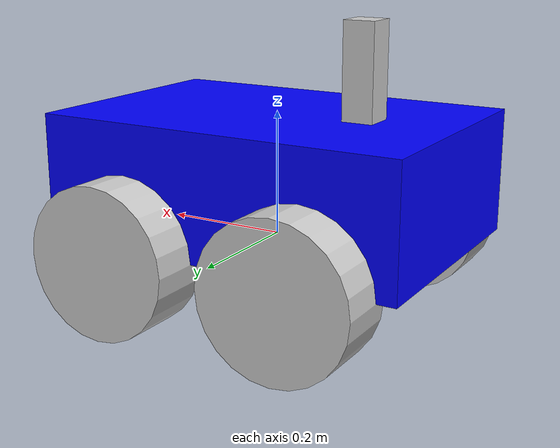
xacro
<?xml version="1.0"?>

<robot name="robot_with_wheels" xmlns:xacro="http://www.ros.org/wiki/xacro">

    <!-- XACRO VARIABLES -->

    <!-- name = that is the name of the variable-->
    <!-- value is the value the assigned inside the variable-->

    <xacro:property name="base_length" value="0.6">
    </xacro:property>

    <xacro:property name="base_width" value="0.4">
    </xacro:property>

    <xacro:property name="base_height" value="0.2">
    </xacro:property>

    <xacro:property name="wheel_radius" value="0.12">
    </xacro:property>

    <xacro:property name="wheel_length" value="0.1">
    </xacro:property>

    <xacro:property name="head_length" value="0.05">
    </xacro:property>

    <xacro:property name="head_width" value="0.05">
    </xacro:property>

    <xacro:property name="head_height" value="0.2">
    </xacro:property>

    <!-- COLORS -->

    <material name = "blue">
        <color rgba="0 0 1 1"/>
    </material>

    <material name = "grey">
        <color rgba="0.8 0.8 0.8 1"/>
    </material>

    <material name = "green">
        <color rgba="0 1 0 1"/>
    </material>

    <!-- LINKS -->

    <!-- ROBOT BODY (BASE) -->
    <link name="base_link">
        <visual>
            <geometry>
                <box size="${base_length} ${base_width} ${base_height}"/>
            </geometry>
            <origin xyz="0 0 0.1" rpy="0 0 0"/>
            <material name="blue"/>

        </visual>
    </link>

    <link name="foot_link">
    </link>

    <!-- ROBOT HEAD AT THE TOP -->
    <link name="head_link">
        <visual>
            <geometry>
                <box size="${head_length} ${head_width} ${head_height}"/>
            </geometry>
            <origin xyz="0 0 0.05" rpy="0.0 0.0 0.0"/>
            <material name="grey"/>
        </visual>
    </link>

    <!-- RIGHT BACK WHEEL -->
    <link name="right_back_wheel_link">
        <visual>
            <geometry>
                <cylinder radius="${wheel_radius}" length="${wheel_length}"/>
            </geometry>
            <origin xyz="0.0 0.0 0.0" rpy="${pi/2} 0.0 0.0"/>
            <!-- whatever put iside the ${} which is identified as xacros properties-->
            <material name="grey"/>

        </visual>

    </link>

    <!-- RIGHT FRONT WHEEL -->
    <link name="right_front_wheel_link">
        <visual>
            <geometry>
                <cylinder radius="${wheel_radius}" length="${wheel_length}"/>
            </geometry>
            <origin xyz="0.0 0.0 0.0" rpy="1.57 0.0 0.0"/>
            <material name="grey"/>
        </visual>
    </link>

    <!-- LEFT BACK WHEEL -->
    <link name="left_back_wheel_link">
        <visual>
            <geometry>
                <cylinder radius="${wheel_radius}" length="${wheel_length}"/>
            </geometry>
            <origin xyz="0 0 0" rpy="1.57 0.0 0.0"/>
            <material name="grey"/>
        </visual>
    </link>

    <!-- LEFT FRONT WHEEL -->
    <link name="left_front_wheel_link">
        <visual>
            <geometry>
                <cylinder radius="${wheel_radius}" length="${wheel_length}"/>
            </geometry>
            <origin xyz="0.0 0.0 0.0" rpy="1.57 0.0 0.0"/>
            <material name="grey"/>
        </visual>
    </link>

    <!-- JOINTS -->

    <!-- BASE AND THE HEAD JOINT -->
    <joint name="base_head" type="fixed">
        <parent link="base_link"/>
        <child link="head_link"/>
        <origin xyz="-0.15 0 0.2" rpy="0.0 0.0 0.0"/>

    </joint>

    <!-- BASE AND THE RIGHT BACK WHEEL JOINT -->
    <joint name="base_right_back_wheel_link" type="continuous">
        <parent link="base_link"/>
        <child link="right_back_wheel_link"/>
        <origin xyz="0.15 0.225 0" rpy="0.0 0.0 0.0"/>
        <axis xyz="0.0 1.0 0.0"/>
    </joint>

    <!-- BASE AND THE left BACK WHEEL JOINT -->
    <joint name="base_left_back_wheel_link" type="continuous">
        <parent link="base_link"/>
        <child link="left_back_wheel_link"/>
        <origin xyz="0.15 -0.225 0.0" rpy="0.0 0.0 0.0"/>
        <axis xyz="0.0 1.0 0.0"/>
    </joint>

    <joint name="base_right_front_wheel_link" type="continuous">
        <parent link="base_link"/>
        <child link="right_front_wheel_link"/>
        <origin xyz="-0.15 0.225 0.0" rpy="0.0 0.0 0.0"/>
        <axis xyz="0.0 1.0 0.0"/>

    </joint>

    <joint name="base_left_front_wheel_link" type="continuous">
        <parent link="base_link"/>
        <child link="left_front_wheel_link"/>
        <origin xyz="-0.15 -0.225 0.0" rpy="0.0 0.0 0.0"/>
        <axis xyz="0.0 1.0 0.0"/>
    </joint>

    <joint name="base_foot_link" type="fixed">
        <parent link="base_link"/>
        <child link="foot_link"/>
        <origin xyz="0.0 0.0 -0.1" rpy="0.0 0.0 0.0"/>

    </joint>

</robot>
